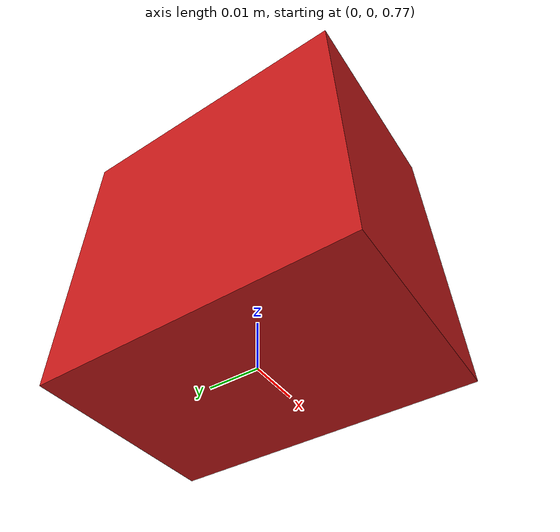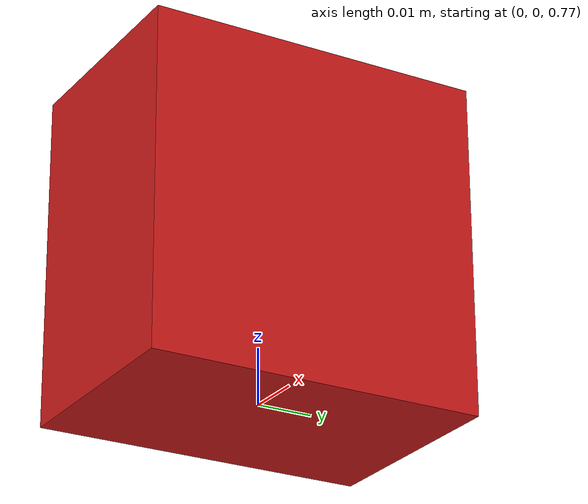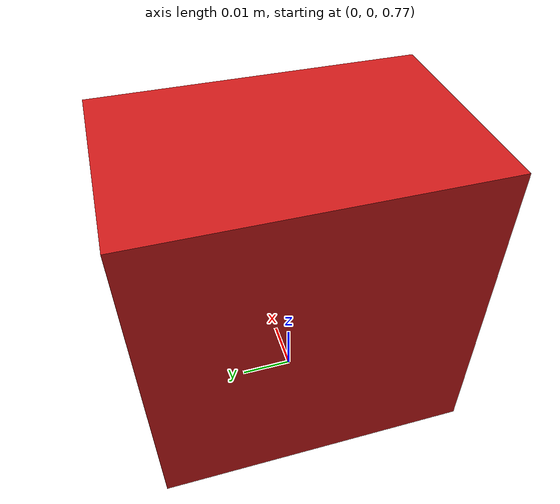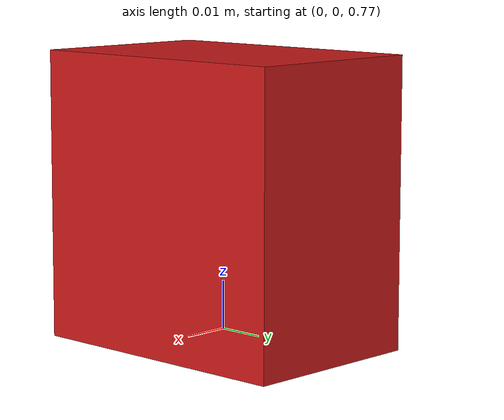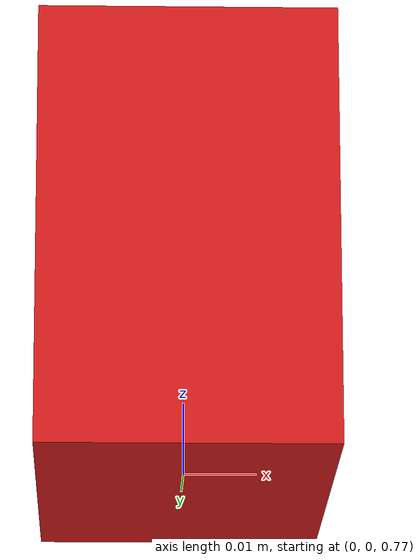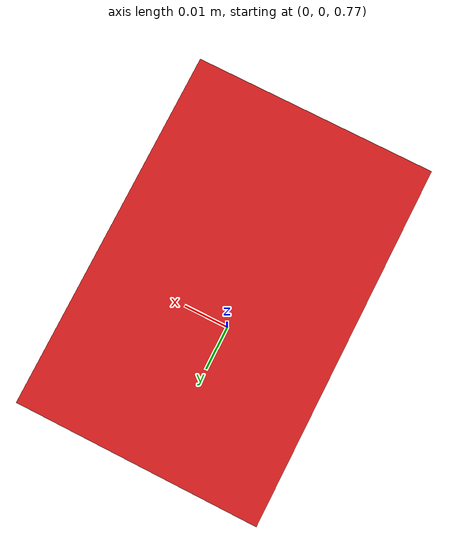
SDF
<?xml version="1.0" ?>
<sdf version="1.9">
  <model name="overhead_camera">
    <static>true</static>
    <pose>0 0 0.797 0 1.5707963 0</pose>

    <link name="link">
      <inertial>
        <mass>0.1</mass>
        <inertia>
          <ixx>0.0001</ixx>
          <iyy>0.0001</iyy>
          <izz>0.0001</izz>
        </inertia>
      </inertial>

      <visual name="visual">
        <geometry>
          <box>
            <size>0.06 0.06 0.04</size>
          </box>
        </geometry>
        <material>
          <ambient>0.8 0.1 0.1 1</ambient>
          <diffuse>0.8 0.1 0.1 1</diffuse>
          <specular>0.2 0.2 0.2 1</specular>
        </material>
      </visual>

      <sensor name="overhead_rgbd_camera" type="rgbd_camera">
        <camera>
          <horizontal_fov>1.047</horizontal_fov>
          <image>
            <width>640</width>
            <height>480</height>
          </image>
          <clip>
            <near>0.05</near>
            <far>10</far>
          </clip>
        </camera>
        <always_on>1</always_on>
        <update_rate>30</update_rate>
        <visualize>true</visualize>
        <topic>overhead_camera</topic>
      </sensor>
    </link>
  </model>
</sdf>
